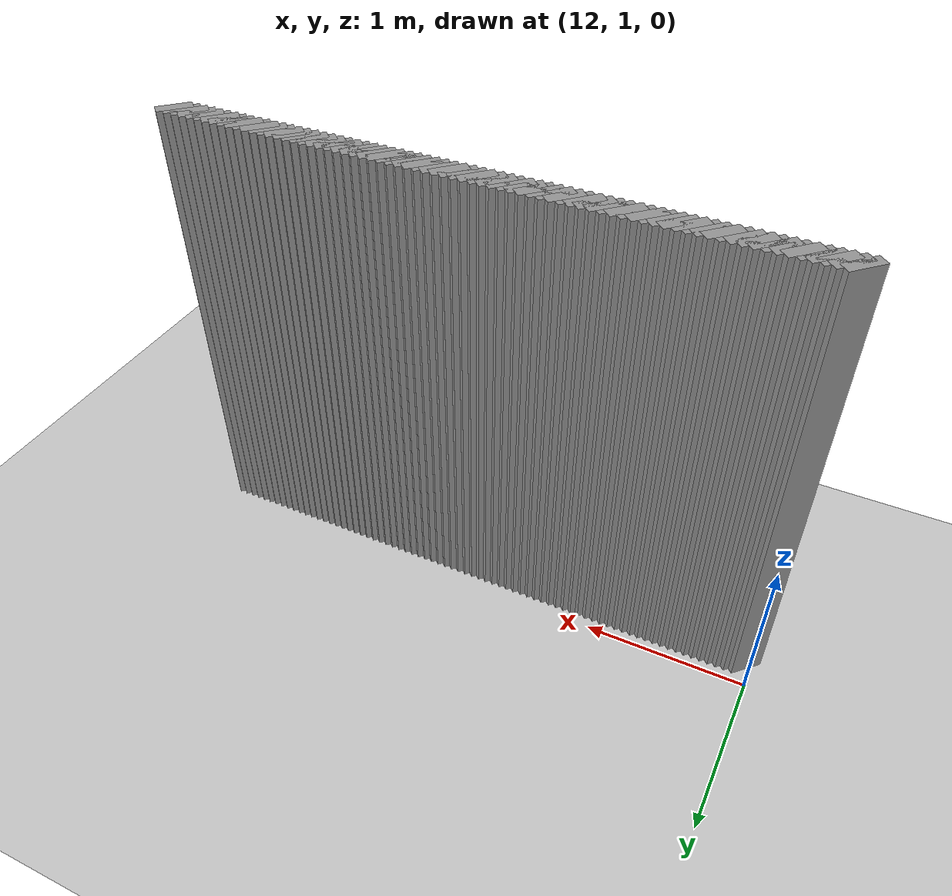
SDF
<sdf version="1.5">
 <world name="default">
  <include><uri>model://ground_plane</uri></include>
  <include><uri>model://sun</uri></include>
  <model name="grey_wall_2809">
   <static>1</static>
   <link name="link">
    <pose>12.05 0.8500000000000001  1.4 0 0 -0.7853981633974416</pose>
    <collision name="collision">
     <geometry><box><size>0.07071067811865529 .2  2.8</size></box></geometry>
    </collision>
    <visual name="visual">
     <cast_shadows>0</cast_shadows>
     <geometry><box><size>0.07071067811865529 .2  2.8</size></box></geometry>
     <material>
      <script>
       <uri>model://grey_wall/materials/scripts</uri>
       <uri>model://grey_wall/materials/textures</uri>
       <name>vrc/grey_wall</name>
      </script>
     </material>
    </visual>
   </link>
  </model>
  <model name="grey_wall_2810">
   <static>1</static>
   <link name="link">
    <pose>12.100000000000001 0.8500000000000001  1.4 0 0 -0.7853981633974416</pose>
    <collision name="collision">
     <geometry><box><size>0.07071067811865529 .2  2.8</size></box></geometry>
    </collision>
    <visual name="visual">
     <cast_shadows>0</cast_shadows>
     <geometry><box><size>0.07071067811865529 .2  2.8</size></box></geometry>
     <material>
      <script>
       <uri>model://grey_wall/materials/scripts</uri>
       <uri>model://grey_wall/materials/textures</uri>
       <name>vrc/grey_wall</name>
      </script>
     </material>
    </visual>
   </link>
  </model>
  <model name="grey_wall_2811">
   <static>1</static>
   <link name="link">
    <pose>12.15 0.8500000000000001  1.4 0 0 -0.7853981633974416</pose>
    <collision name="collision">
     <geometry><box><size>0.07071067811865529 .2  2.8</size></box></geometry>
    </collision>
    <visual name="visual">
     <cast_shadows>0</cast_shadows>
     <geometry><box><size>0.07071067811865529 .2  2.8</size></box></geometry>
     <material>
      <script>
       <uri>model://grey_wall/materials/scripts</uri>
       <uri>model://grey_wall/materials/textures</uri>
       <name>vrc/grey_wall</name>
      </script>
     </material>
    </visual>
   </link>
  </model>
  <model name="grey_wall_2812">
   <static>1</static>
   <link name="link">
    <pose>12.200000000000001 0.8500000000000001  1.4 0 0 -0.7853981633974416</pose>
    <collision name="collision">
     <geometry><box><size>0.07071067811865529 .2  2.8</size></box></geometry>
    </collision>
    <visual name="visual">
     <cast_shadows>0</cast_shadows>
     <geometry><box><size>0.07071067811865529 .2  2.8</size></box></geometry>
     <material>
      <script>
       <uri>model://grey_wall/materials/scripts</uri>
       <uri>model://grey_wall/materials/textures</uri>
       <name>vrc/grey_wall</name>
      </script>
     </material>
    </visual>
   </link>
  </model>
  <model name="grey_wall_2813">
   <static>1</static>
   <link name="link">
    <pose>12.25 0.8500000000000001  1.4 0 0 -0.7853981633974416</pose>
    <collision name="collision">
     <geometry><box><size>0.07071067811865529 .2  2.8</size></box></geometry>
    </collision>
    <visual name="visual">
     <cast_shadows>0</cast_shadows>
     <geometry><box><size>0.07071067811865529 .2  2.8</size></box></geometry>
     <material>
      <script>
       <uri>model://grey_wall/materials/scripts</uri>
       <uri>model://grey_wall/materials/textures</uri>
       <name>vrc/grey_wall</name>
      </script>
     </material>
    </visual>
   </link>
  </model>
  <model name="grey_wall_2814">
   <static>1</static>
   <link name="link">
    <pose>12.3 0.8500000000000001  1.4 0 0 -0.7853981633974416</pose>
    <collision name="collision">
     <geometry><box><size>0.07071067811865529 .2  2.8</size></box></geometry>
    </collision>
    <visual name="visual">
     <cast_shadows>0</cast_shadows>
     <geometry><box><size>0.07071067811865529 .2  2.8</size></box></geometry>
     <material>
      <script>
       <uri>model://grey_wall/materials/scripts</uri>
       <uri>model://grey_wall/materials/textures</uri>
       <name>vrc/grey_wall</name>
      </script>
     </material>
    </visual>
   </link>
  </model>
  <model name="grey_wall_2815">
   <static>1</static>
   <link name="link">
    <pose>12.350000000000001 0.8500000000000001  1.4 0 0 -0.7853981633974416</pose>
    <collision name="collision">
     <geometry><box><size>0.07071067811865529 .2  2.8</size></box></geometry>
    </collision>
    <visual name="visual">
     <cast_shadows>0</cast_shadows>
     <geometry><box><size>0.07071067811865529 .2  2.8</size></box></geometry>
     <material>
      <script>
       <uri>model://grey_wall/materials/scripts</uri>
       <uri>model://grey_wall/materials/textures</uri>
       <name>vrc/grey_wall</name>
      </script>
     </material>
    </visual>
   </link>
  </model>
  <model name="grey_wall_2816">
   <static>1</static>
   <link name="link">
    <pose>12.4 0.8500000000000001  1.4 0 0 -0.7853981633974416</pose>
    <collision name="collision">
     <geometry><box><size>0.07071067811865529 .2  2.8</size></box></geometry>
    </collision>
    <visual name="visual">
     <cast_shadows>0</cast_shadows>
     <geometry><box><size>0.07071067811865529 .2  2.8</size></box></geometry>
     <material>
      <script>
       <uri>model://grey_wall/materials/scripts</uri>
       <uri>model://grey_wall/materials/textures</uri>
       <name>vrc/grey_wall</name>
      </script>
     </material>
    </visual>
   </link>
  </model>
  <model name="grey_wall_2817">
   <static>1</static>
   <link name="link">
    <pose>12.450000000000001 0.8500000000000001  1.4 0 0 -0.7853981633974416</pose>
    <collision name="collision">
     <geometry><box><size>0.07071067811865529 .2  2.8</size></box></geometry>
    </collision>
    <visual name="visual">
     <cast_shadows>0</cast_shadows>
     <geometry><box><size>0.07071067811865529 .2  2.8</size></box></geometry>
     <material>
      <script>
       <uri>model://grey_wall/materials/scripts</uri>
       <uri>model://grey_wall/materials/textures</uri>
       <name>vrc/grey_wall</name>
      </script>
     </material>
    </visual>
   </link>
  </model>
  <model name="grey_wall_2818">
   <static>1</static>
   <link name="link">
    <pose>12.5 0.8500000000000001  1.4 0 0 -0.7853981633974416</pose>
    <collision name="collision">
     <geometry><box><size>0.07071067811865529 .2  2.8</size></box></geometry>
    </collision>
    <visual name="visual">
     <cast_shadows>0</cast_shadows>
     <geometry><box><size>0.07071067811865529 .2  2.8</size></box></geometry>
     <material>
      <script>
       <uri>model://grey_wall/materials/scripts</uri>
       <uri>model://grey_wall/materials/textures</uri>
       <name>vrc/grey_wall</name>
      </script>
     </material>
    </visual>
   </link>
  </model>
  <model name="grey_wall_2819">
   <static>1</static>
   <link name="link">
    <pose>12.55 0.8500000000000001  1.4 0 0 -0.7853981633974416</pose>
    <collision name="collision">
     <geometry><box><size>0.07071067811865529 .2  2.8</size></box></geometry>
    </collision>
    <visual name="visual">
     <cast_shadows>0</cast_shadows>
     <geometry><box><size>0.07071067811865529 .2  2.8</size></box></geometry>
     <material>
      <script>
       <uri>model://grey_wall/materials/scripts</uri>
       <uri>model://grey_wall/materials/textures</uri>
       <name>vrc/grey_wall</name>
      </script>
     </material>
    </visual>
   </link>
  </model>
  <model name="grey_wall_2820">
   <static>1</static>
   <link name="link">
    <pose>12.600000000000001 0.8500000000000001  1.4 0 0 -0.7853981633974416</pose>
    <collision name="collision">
     <geometry><box><size>0.07071067811865529 .2  2.8</size></box></geometry>
    </collision>
    <visual name="visual">
     <cast_shadows>0</cast_shadows>
     <geometry><box><size>0.07071067811865529 .2  2.8</size></box></geometry>
     <material>
      <script>
       <uri>model://grey_wall/materials/scripts</uri>
       <uri>model://grey_wall/materials/textures</uri>
       <name>vrc/grey_wall</name>
      </script>
     </material>
    </visual>
   </link>
  </model>
  <model name="grey_wall_2821">
   <static>1</static>
   <link name="link">
    <pose>12.65 0.8500000000000001  1.4 0 0 -0.7853981633974416</pose>
    <collision name="collision">
     <geometry><box><size>0.07071067811865529 .2  2.8</size></box></geometry>
    </collision>
    <visual name="visual">
     <cast_shadows>0</cast_shadows>
     <geometry><box><size>0.07071067811865529 .2  2.8</size></box></geometry>
     <material>
      <script>
       <uri>model://grey_wall/materials/scripts</uri>
       <uri>model://grey_wall/materials/textures</uri>
       <name>vrc/grey_wall</name>
      </script>
     </material>
    </visual>
   </link>
  </model>
  <model name="grey_wall_2822">
   <static>1</static>
   <link name="link">
    <pose>12.700000000000001 0.8500000000000001  1.4 0 0 -0.7853981633974416</pose>
    <collision name="collision">
     <geometry><box><size>0.07071067811865529 .2  2.8</size></box></geometry>
    </collision>
    <visual name="visual">
     <cast_shadows>0</cast_shadows>
     <geometry><box><size>0.07071067811865529 .2  2.8</size></box></geometry>
     <material>
      <script>
       <uri>model://grey_wall/materials/scripts</uri>
       <uri>model://grey_wall/materials/textures</uri>
       <name>vrc/grey_wall</name>
      </script>
     </material>
    </visual>
   </link>
  </model>
  <model name="grey_wall_2823">
   <static>1</static>
   <link name="link">
    <pose>12.75 0.8500000000000001  1.4 0 0 -0.7853981633974416</pose>
    <collision name="collision">
     <geometry><box><size>0.07071067811865529 .2  2.8</size></box></geometry>
    </collision>
    <visual name="visual">
     <cast_shadows>0</cast_shadows>
     <geometry><box><size>0.07071067811865529 .2  2.8</size></box></geometry>
     <material>
      <script>
       <uri>model://grey_wall/materials/scripts</uri>
       <uri>model://grey_wall/materials/textures</uri>
       <name>vrc/grey_wall</name>
      </script>
     </material>
    </visual>
   </link>
  </model>
  <model name="grey_wall_2824">
   <static>1</static>
   <link name="link">
    <pose>12.8 0.8500000000000001  1.4 0 0 -0.7853981633974416</pose>
    <collision name="collision">
     <geometry><box><size>0.07071067811865529 .2  2.8</size></box></geometry>
    </collision>
    <visual name="visual">
     <cast_shadows>0</cast_shadows>
     <geometry><box><size>0.07071067811865529 .2  2.8</size></box></geometry>
     <material>
      <script>
       <uri>model://grey_wall/materials/scripts</uri>
       <uri>model://grey_wall/materials/textures</uri>
       <name>vrc/grey_wall</name>
      </script>
     </material>
    </visual>
   </link>
  </model>
  <model name="grey_wall_2825">
   <static>1</static>
   <link name="link">
    <pose>12.850000000000001 0.8500000000000001  1.4 0 0 -0.7853981633974416</pose>
    <collision name="collision">
     <geometry><box><size>0.07071067811865529 .2  2.8</size></box></geometry>
    </collision>
    <visual name="visual">
     <cast_shadows>0</cast_shadows>
     <geometry><box><size>0.07071067811865529 .2  2.8</size></box></geometry>
     <material>
      <script>
       <uri>model://grey_wall/materials/scripts</uri>
       <uri>model://grey_wall/materials/textures</uri>
       <name>vrc/grey_wall</name>
      </script>
     </material>
    </visual>
   </link>
  </model>
  <model name="grey_wall_2826">
   <static>1</static>
   <link name="link">
    <pose>12.9 0.8500000000000001  1.4 0 0 -0.7853981633974416</pose>
    <collision name="collision">
     <geometry><box><size>0.07071067811865529 .2  2.8</size></box></geometry>
    </collision>
    <visual name="visual">
     <cast_shadows>0</cast_shadows>
     <geometry><box><size>0.07071067811865529 .2  2.8</size></box></geometry>
     <material>
      <script>
       <uri>model://grey_wall/materials/scripts</uri>
       <uri>model://grey_wall/materials/textures</uri>
       <name>vrc/grey_wall</name>
      </script>
     </material>
    </visual>
   </link>
  </model>
  <model name="grey_wall_2827">
   <static>1</static>
   <link name="link">
    <pose>12.950000000000001 0.8500000000000001  1.4 0 0 -0.7853981633974416</pose>
    <collision name="collision">
     <geometry><box><size>0.07071067811865529 .2  2.8</size></box></geometry>
    </collision>
    <visual name="visual">
     <cast_shadows>0</cast_shadows>
     <geometry><box><size>0.07071067811865529 .2  2.8</size></box></geometry>
     <material>
      <script>
       <uri>model://grey_wall/materials/scripts</uri>
       <uri>model://grey_wall/materials/textures</uri>
       <name>vrc/grey_wall</name>
      </script>
     </material>
    </visual>
   </link>
  </model>
  <model name="grey_wall_2828">
   <static>1</static>
   <link name="link">
    <pose>13.0 0.8500000000000001  1.4 0 0 -0.7853981633974416</pose>
    <collision name="collision">
     <geometry><box><size>0.07071067811865529 .2  2.8</size></box></geometry>
    </collision>
    <visual name="visual">
     <cast_shadows>0</cast_shadows>
     <geometry><box><size>0.07071067811865529 .2  2.8</size></box></geometry>
     <material>
      <script>
       <uri>model://grey_wall/materials/scripts</uri>
       <uri>model://grey_wall/materials/textures</uri>
       <name>vrc/grey_wall</name>
      </script>
     </material>
    </visual>
   </link>
  </model>
  <model name="grey_wall_2829">
   <static>1</static>
   <link name="link">
    <pose>13.05 0.8500000000000001  1.4 0 0 -0.7853981633974416</pose>
    <collision name="collision">
     <geometry><box><size>0.07071067811865529 .2  2.8</size></box></geometry>
    </collision>
    <visual name="visual">
     <cast_shadows>0</cast_shadows>
     <geometry><box><size>0.07071067811865529 .2  2.8</size></box></geometry>
     <material>
      <script>
       <uri>model://grey_wall/materials/scripts</uri>
       <uri>model://grey_wall/materials/textures</uri>
       <name>vrc/grey_wall</name>
      </script>
     </material>
    </visual>
   </link>
  </model>
  <model name="grey_wall_2830">
   <static>1</static>
   <link name="link">
    <pose>13.100000000000001 0.8500000000000001  1.4 0 0 -0.7853981633974416</pose>
    <collision name="collision">
     <geometry><box><size>0.07071067811865529 .2  2.8</size></box></geometry>
    </collision>
    <visual name="visual">
     <cast_shadows>0</cast_shadows>
     <geometry><box><size>0.07071067811865529 .2  2.8</size></box></geometry>
     <material>
      <script>
       <uri>model://grey_wall/materials/scripts</uri>
       <uri>model://grey_wall/materials/textures</uri>
       <name>vrc/grey_wall</name>
      </script>
     </material>
    </visual>
   </link>
  </model>
  <model name="grey_wall_2831">
   <static>1</static>
   <link name="link">
    <pose>13.15 0.8500000000000001  1.4 0 0 -0.7853981633974416</pose>
    <collision name="collision">
     <geometry><box><size>0.07071067811865529 .2  2.8</size></box></geometry>
    </collision>
    <visual name="visual">
     <cast_shadows>0</cast_shadows>
     <geometry><box><size>0.07071067811865529 .2  2.8</size></box></geometry>
     <material>
      <script>
       <uri>model://grey_wall/materials/scripts</uri>
       <uri>model://grey_wall/materials/textures</uri>
       <name>vrc/grey_wall</name>
      </script>
     </material>
    </visual>
   </link>
  </model>
  <model name="grey_wall_2832">
   <static>1</static>
   <link name="link">
    <pose>13.200000000000001 0.8500000000000001  1.4 0 0 -0.7853981633974416</pose>
    <collision name="collision">
     <geometry><box><size>0.07071067811865529 .2  2.8</size></box></geometry>
    </collision>
    <visual name="visual">
     <cast_shadows>0</cast_shadows>
     <geometry><box><size>0.07071067811865529 .2  2.8</size></box></geometry>
     <material>
      <script>
       <uri>model://grey_wall/materials/scripts</uri>
       <uri>model://grey_wall/materials/textures</uri>
       <name>vrc/grey_wall</name>
      </script>
     </material>
    </visual>
   </link>
  </model>
  <model name="grey_wall_2833">
   <static>1</static>
   <link name="link">
    <pose>13.25 0.8500000000000001  1.4 0 0 -0.7853981633974416</pose>
    <collision name="collision">
     <geometry><box><size>0.07071067811865529 .2  2.8</size></box></geometry>
    </collision>
    <visual name="visual">
     <cast_shadows>0</cast_shadows>
     <geometry><box><size>0.07071067811865529 .2  2.8</size></box></geometry>
     <material>
      <script>
       <uri>model://grey_wall/materials/scripts</uri>
       <uri>model://grey_wall/materials/textures</uri>
       <name>vrc/grey_wall</name>
      </script>
     </material>
    </visual>
   </link>
  </model>
  <model name="grey_wall_2834">
   <static>1</static>
   <link name="link">
    <pose>13.3 0.8500000000000001  1.4 0 0 -0.7853981633974416</pose>
    <collision name="collision">
     <geometry><box><size>0.07071067811865529 .2  2.8</size></box></geometry>
    </collision>
    <visual name="visual">
     <cast_shadows>0</cast_shadows>
     <geometry><box><size>0.07071067811865529 .2  2.8</size></box></geometry>
     <material>
      <script>
       <uri>model://grey_wall/materials/scripts</uri>
       <uri>model://grey_wall/materials/textures</uri>
       <name>vrc/grey_wall</name>
      </script>
     </material>
    </visual>
   </link>
  </model>
  <model name="grey_wall_2835">
   <static>1</static>
   <link name="link">
    <pose>13.350000000000001 0.8500000000000001  1.4 0 0 -0.7853981633974416</pose>
    <collision name="collision">
     <geometry><box><size>0.07071067811865529 .2  2.8</size></box></geometry>
    </collision>
    <visual name="visual">
     <cast_shadows>0</cast_shadows>
     <geometry><box><size>0.07071067811865529 .2  2.8</size></box></geometry>
     <material>
      <script>
       <uri>model://grey_wall/materials/scripts</uri>
       <uri>model://grey_wall/materials/textures</uri>
       <name>vrc/grey_wall</name>
      </script>
     </material>
    </visual>
   </link>
  </model>
  <model name="grey_wall_2836">
   <static>1</static>
   <link name="link">
    <pose>13.4 0.8500000000000001  1.4 0 0 -0.7853981633974416</pose>
    <collision name="collision">
     <geometry><box><size>0.07071067811865529 .2  2.8</size></box></geometry>
    </collision>
    <visual name="visual">
     <cast_shadows>0</cast_shadows>
     <geometry><box><size>0.07071067811865529 .2  2.8</size></box></geometry>
     <material>
      <script>
       <uri>model://grey_wall/materials/scripts</uri>
       <uri>model://grey_wall/materials/textures</uri>
       <name>vrc/grey_wall</name>
      </script>
     </material>
    </visual>
   </link>
  </model>
  <model name="grey_wall_2837">
   <static>1</static>
   <link name="link">
    <pose>13.450000000000001 0.8500000000000001  1.4 0 0 -0.7853981633974416</pose>
    <collision name="collision">
     <geometry><box><size>0.07071067811865529 .2  2.8</size></box></geometry>
    </collision>
    <visual name="visual">
     <cast_shadows>0</cast_shadows>
     <geometry><box><size>0.07071067811865529 .2  2.8</size></box></geometry>
     <material>
      <script>
       <uri>model://grey_wall/materials/scripts</uri>
       <uri>model://grey_wall/materials/textures</uri>
       <name>vrc/grey_wall</name>
      </script>
     </material>
    </visual>
   </link>
  </model>
  <model name="grey_wall_2838">
   <static>1</static>
   <link name="link">
    <pose>13.5 0.8500000000000001  1.4 0 0 -0.7853981633974416</pose>
    <collision name="collision">
     <geometry><box><size>0.07071067811865529 .2  2.8</size></box></geometry>
    </collision>
    <visual name="visual">
     <cast_shadows>0</cast_shadows>
     <geometry><box><size>0.07071067811865529 .2  2.8</size></box></geometry>
     <material>
      <script>
       <uri>model://grey_wall/materials/scripts</uri>
       <uri>model://grey_wall/materials/textures</uri>
       <name>vrc/grey_wall</name>
      </script>
     </material>
    </visual>
   </link>
  </model>
  <model name="grey_wall_2839">
   <static>1</static>
   <link name="link">
    <pose>13.55 0.8500000000000001  1.4 0 0 -0.7853981633974416</pose>
    <collision name="collision">
     <geometry><box><size>0.07071067811865529 .2  2.8</size></box></geometry>
    </collision>
    <visual name="visual">
     <cast_shadows>0</cast_shadows>
     <geometry><box><size>0.07071067811865529 .2  2.8</size></box></geometry>
     <material>
      <script>
       <uri>model://grey_wall/materials/scripts</uri>
       <uri>model://grey_wall/materials/textures</uri>
       <name>vrc/grey_wall</name>
      </script>
     </material>
    </visual>
   </link>
  </model>
  <model name="grey_wall_2840">
   <static>1</static>
   <link name="link">
    <pose>13.600000000000001 0.8500000000000001  1.4 0 0 -0.7853981633974416</pose>
    <collision name="collision">
     <geometry><box><size>0.07071067811865529 .2  2.8</size></box></geometry>
    </collision>
    <visual name="visual">
     <cast_shadows>0</cast_shadows>
     <geometry><box><size>0.07071067811865529 .2  2.8</size></box></geometry>
     <material>
      <script>
       <uri>model://grey_wall/materials/scripts</uri>
       <uri>model://grey_wall/materials/textures</uri>
       <name>vrc/grey_wall</name>
      </script>
     </material>
    </visual>
   </link>
  </model>
  <model name="grey_wall_2841">
   <static>1</static>
   <link name="link">
    <pose>13.65 0.8500000000000001  1.4 0 0 -0.7853981633974416</pose>
    <collision name="collision">
     <geometry><box><size>0.07071067811865529 .2  2.8</size></box></geometry>
    </collision>
    <visual name="visual">
     <cast_shadows>0</cast_shadows>
     <geometry><box><size>0.07071067811865529 .2  2.8</size></box></geometry>
     <material>
      <script>
       <uri>model://grey_wall/materials/scripts</uri>
       <uri>model://grey_wall/materials/textures</uri>
       <name>vrc/grey_wall</name>
      </script>
     </material>
    </visual>
   </link>
  </model>
  <model name="grey_wall_2842">
   <static>1</static>
   <link name="link">
    <pose>13.700000000000001 0.8500000000000001  1.4 0 0 -0.7853981633974416</pose>
    <collision name="collision">
     <geometry><box><size>0.07071067811865529 .2  2.8</size></box></geometry>
    </collision>
    <visual name="visual">
     <cast_shadows>0</cast_shadows>
     <geometry><box><size>0.07071067811865529 .2  2.8</size></box></geometry>
     <material>
      <script>
       <uri>model://grey_wall/materials/scripts</uri>
       <uri>model://grey_wall/materials/textures</uri>
       <name>vrc/grey_wall</name>
      </script>
     </material>
    </visual>
   </link>
  </model>
  <model name="grey_wall_2843">
   <static>1</static>
   <link name="link">
    <pose>13.75 0.8500000000000001  1.4 0 0 -0.7853981633974416</pose>
    <collision name="collision">
     <geometry><box><size>0.07071067811865529 .2  2.8</size></box></geometry>
    </collision>
    <visual name="visual">
     <cast_shadows>0</cast_shadows>
     <geometry><box><size>0.07071067811865529 .2  2.8</size></box></geometry>
     <material>
      <script>
       <uri>model://grey_wall/materials/scripts</uri>
       <uri>model://grey_wall/materials/textures</uri>
       <name>vrc/grey_wall</name>
      </script>
     </material>
    </visual>
   </link>
  </model>
  <model name="grey_wall_2844">
   <static>1</static>
   <link name="link">
    <pose>13.8 0.8500000000000001  1.4 0 0 -0.7853981633974416</pose>
    <collision name="collision">
     <geometry><box><size>0.07071067811865529 .2  2.8</size></box></geometry>
    </collision>
    <visual name="visual">
     <cast_shadows>0</cast_shadows>
     <geometry><box><size>0.07071067811865529 .2  2.8</size></box></geometry>
     <material>
      <script>
       <uri>model://grey_wall/materials/scripts</uri>
       <uri>model://grey_wall/materials/textures</uri>
       <name>vrc/grey_wall</name>
      </script>
     </material>
    </visual>
   </link>
  </model>
  <model name="grey_wall_2845">
   <static>1</static>
   <link name="link">
    <pose>13.850000000000001 0.8500000000000001  1.4 0 0 -0.7853981633974416</pose>
    <collision name="collision">
     <geometry><box><size>0.07071067811865529 .2  2.8</size></box></geometry>
    </collision>
    <visual name="visual">
     <cast_shadows>0</cast_shadows>
     <geometry><box><size>0.07071067811865529 .2  2.8</size></box></geometry>
     <material>
      <script>
       <uri>model://grey_wall/materials/scripts</uri>
       <uri>model://grey_wall/materials/textures</uri>
       <name>vrc/grey_wall</name>
      </script>
     </material>
    </visual>
   </link>
  </model>
  <model name="grey_wall_2846">
   <static>1</static>
   <link name="link">
    <pose>13.9 0.8500000000000001  1.4 0 0 -0.7853981633974416</pose>
    <collision name="collision">
     <geometry><box><size>0.07071067811865529 .2  2.8</size></box></geometry>
    </collision>
    <visual name="visual">
     <cast_shadows>0</cast_shadows>
     <geometry><box><size>0.07071067811865529 .2  2.8</size></box></geometry>
     <material>
      <script>
       <uri>model://grey_wall/materials/scripts</uri>
       <uri>model://grey_wall/materials/textures</uri>
       <name>vrc/grey_wall</name>
      </script>
     </material>
    </visual>
   </link>
  </model>
  <model name="grey_wall_2847">
   <static>1</static>
   <link name="link">
    <pose>13.950000000000001 0.8500000000000001  1.4 0 0 -0.7853981633974416</pose>
    <collision name="collision">
     <geometry><box><size>0.07071067811865529 .2  2.8</size></box></geometry>
    </collision>
    <visual name="visual">
     <cast_shadows>0</cast_shadows>
     <geometry><box><size>0.07071067811865529 .2  2.8</size></box></geometry>
     <material>
      <script>
       <uri>model://grey_wall/materials/scripts</uri>
       <uri>model://grey_wall/materials/textures</uri>
       <name>vrc/grey_wall</name>
      </script>
     </material>
    </visual>
   </link>
  </model>
  <model name="grey_wall_2848">
   <static>1</static>
   <link name="link">
    <pose>14.0 0.8500000000000001  1.4 0 0 -0.7853981633974416</pose>
    <collision name="collision">
     <geometry><box><size>0.07071067811865529 .2  2.8</size></box></geometry>
    </collision>
    <visual name="visual">
     <cast_shadows>0</cast_shadows>
     <geometry><box><size>0.07071067811865529 .2  2.8</size></box></geometry>
     <material>
      <script>
       <uri>model://grey_wall/materials/scripts</uri>
       <uri>model://grey_wall/materials/textures</uri>
       <name>vrc/grey_wall</name>
      </script>
     </material>
    </visual>
   </link>
  </model>
  <model name="grey_wall_2849">
   <static>1</static>
   <link name="link">
    <pose>14.05 0.8500000000000001  1.4 0 0 -0.7853981633974416</pose>
    <collision name="collision">
     <geometry><box><size>0.07071067811865529 .2  2.8</size></box></geometry>
    </collision>
    <visual name="visual">
     <cast_shadows>0</cast_shadows>
     <geometry><box><size>0.07071067811865529 .2  2.8</size></box></geometry>
     <material>
      <script>
       <uri>model://grey_wall/materials/scripts</uri>
       <uri>model://grey_wall/materials/textures</uri>
       <name>vrc/grey_wall</name>
      </script>
     </material>
    </visual>
   </link>
  </model>
  <model name="grey_wall_2850">
   <static>1</static>
   <link name="link">
    <pose>14.100000000000001 0.8500000000000001  1.4 0 0 -0.7853981633974416</pose>
    <collision name="collision">
     <geometry><box><size>0.07071067811865529 .2  2.8</size></box></geometry>
    </collision>
    <visual name="visual">
     <cast_shadows>0</cast_shadows>
     <geometry><box><size>0.07071067811865529 .2  2.8</size></box></geometry>
     <material>
      <script>
       <uri>model://grey_wall/materials/scripts</uri>
       <uri>model://grey_wall/materials/textures</uri>
       <name>vrc/grey_wall</name>
      </script>
     </material>
    </visual>
   </link>
  </model>
  <model name="grey_wall_2851">
   <static>1</static>
   <link name="link">
    <pose>14.15 0.8500000000000001  1.4 0 0 -0.7853981633974416</pose>
    <collision name="collision">
     <geometry><box><size>0.07071067811865529 .2  2.8</size></box></geometry>
    </collision>
    <visual name="visual">
     <cast_shadows>0</cast_shadows>
     <geometry><box><size>0.07071067811865529 .2  2.8</size></box></geometry>
     <material>
      <script>
       <uri>model://grey_wall/materials/scripts</uri>
       <uri>model://grey_wall/materials/textures</uri>
       <name>vrc/grey_wall</name>
      </script>
     </material>
    </visual>
   </link>
  </model>
  <model name="grey_wall_2852">
   <static>1</static>
   <link name="link">
    <pose>14.200000000000001 0.8500000000000001  1.4 0 0 -0.7853981633974416</pose>
    <collision name="collision">
     <geometry><box><size>0.07071067811865529 .2  2.8</size></box></geometry>
    </collision>
    <visual name="visual">
     <cast_shadows>0</cast_shadows>
     <geometry><box><size>0.07071067811865529 .2  2.8</size></box></geometry>
     <material>
      <script>
       <uri>model://grey_wall/materials/scripts</uri>
       <uri>model://grey_wall/materials/textures</uri>
       <name>vrc/grey_wall</name>
      </script>
     </material>
    </visual>
   </link>
  </model>
  <model name="grey_wall_2853">
   <static>1</static>
   <link name="link">
    <pose>14.25 0.8500000000000001  1.4 0 0 -0.7853981633974416</pose>
    <collision name="collision">
     <geometry><box><size>0.07071067811865529 .2  2.8</size></box></geometry>
    </collision>
    <visual name="visual">
     <cast_shadows>0</cast_shadows>
     <geometry><box><size>0.07071067811865529 .2  2.8</size></box></geometry>
     <material>
      <script>
       <uri>model://grey_wall/materials/scripts</uri>
       <uri>model://grey_wall/materials/textures</uri>
       <name>vrc/grey_wall</name>
      </script>
     </material>
    </visual>
   </link>
  </model>
  <model name="grey_wall_2854">
   <static>1</static>
   <link name="link">
    <pose>14.3 0.8500000000000001  1.4 0 0 -0.7853981633974416</pose>
    <collision name="collision">
     <geometry><box><size>0.07071067811865529 .2  2.8</size></box></geometry>
    </collision>
    <visual name="visual">
     <cast_shadows>0</cast_shadows>
     <geometry><box><size>0.07071067811865529 .2  2.8</size></box></geometry>
     <material>
      <script>
       <uri>model://grey_wall/materials/scripts</uri>
       <uri>model://grey_wall/materials/textures</uri>
       <name>vrc/grey_wall</name>
      </script>
     </material>
    </visual>
   </link>
  </model>
  <model name="grey_wall_2855">
   <static>1</static>
   <link name="link">
    <pose>14.350000000000001 0.8500000000000001  1.4 0 0 -0.7853981633974416</pose>
    <collision name="collision">
     <geometry><box><size>0.07071067811865529 .2  2.8</size></box></geometry>
    </collision>
    <visual name="visual">
     <cast_shadows>0</cast_shadows>
     <geometry><box><size>0.07071067811865529 .2  2.8</size></box></geometry>
     <material>
      <script>
       <uri>model://grey_wall/materials/scripts</uri>
       <uri>model://grey_wall/materials/textures</uri>
       <name>vrc/grey_wall</name>
      </script>
     </material>
    </visual>
   </link>
  </model>
  <model name="grey_wall_2856">
   <static>1</static>
   <link name="link">
    <pose>14.4 0.8500000000000001  1.4 0 0 -0.7853981633974416</pose>
    <collision name="collision">
     <geometry><box><size>0.07071067811865529 .2  2.8</size></box></geometry>
    </collision>
    <visual name="visual">
     <cast_shadows>0</cast_shadows>
     <geometry><box><size>0.07071067811865529 .2  2.8</size></box></geometry>
     <material>
      <script>
       <uri>model://grey_wall/materials/scripts</uri>
       <uri>model://grey_wall/materials/textures</uri>
       <name>vrc/grey_wall</name>
      </script>
     </material>
    </visual>
   </link>
  </model>
  <model name="grey_wall_2857">
   <static>1</static>
   <link name="link">
    <pose>14.450000000000001 0.8500000000000001  1.4 0 0 -0.7853981633974416</pose>
    <collision name="collision">
     <geometry><box><size>0.07071067811865529 .2  2.8</size></box></geometry>
    </collision>
    <visual name="visual">
     <cast_shadows>0</cast_shadows>
     <geometry><box><size>0.07071067811865529 .2  2.8</size></box></geometry>
     <material>
      <script>
       <uri>model://grey_wall/materials/scripts</uri>
       <uri>model://grey_wall/materials/textures</uri>
       <name>vrc/grey_wall</name>
      </script>
     </material>
    </visual>
   </link>
  </model>
  <model name="grey_wall_2858">
   <static>1</static>
   <link name="link">
    <pose>14.5 0.8500000000000001  1.4 0 0 -0.7853981633974416</pose>
    <collision name="collision">
     <geometry><box><size>0.07071067811865529 .2  2.8</size></box></geometry>
    </collision>
    <visual name="visual">
     <cast_shadows>0</cast_shadows>
     <geometry><box><size>0.07071067811865529 .2  2.8</size></box></geometry>
     <material>
      <script>
       <uri>model://grey_wall/materials/scripts</uri>
       <uri>model://grey_wall/materials/textures</uri>
       <name>vrc/grey_wall</name>
      </script>
     </material>
    </visual>
   </link>
  </model>
  <model name="grey_wall_2859">
   <static>1</static>
   <link name="link">
    <pose>14.55 0.8500000000000001  1.4 0 0 -0.7853981633974416</pose>
    <collision name="collision">
     <geometry><box><size>0.07071067811865529 .2  2.8</size></box></geometry>
    </collision>
    <visual name="visual">
     <cast_shadows>0</cast_shadows>
     <geometry><box><size>0.07071067811865529 .2  2.8</size></box></geometry>
     <material>
      <script>
       <uri>model://grey_wall/materials/scripts</uri>
       <uri>model://grey_wall/materials/textures</uri>
       <name>vrc/grey_wall</name>
      </script>
     </material>
    </visual>
   </link>
  </model>
  <model name="grey_wall_2860">
   <static>1</static>
   <link name="link">
    <pose>14.600000000000001 0.8500000000000001  1.4 0 0 -0.7853981633974416</pose>
    <collision name="collision">
     <geometry><box><size>0.07071067811865529 .2  2.8</size></box></geometry>
    </collision>
    <visual name="visual">
     <cast_shadows>0</cast_shadows>
     <geometry><box><size>0.07071067811865529 .2  2.8</size></box></geometry>
     <material>
      <script>
       <uri>model://grey_wall/materials/scripts</uri>
       <uri>model://grey_wall/materials/textures</uri>
       <name>vrc/grey_wall</name>
      </script>
     </material>
    </visual>
   </link>
  </model>
  <model name="grey_wall_2861">
   <static>1</static>
   <link name="link">
    <pose>14.65 0.8500000000000001  1.4 0 0 -0.7853981633974416</pose>
    <collision name="collision">
     <geometry><box><size>0.07071067811865529 .2  2.8</size></box></geometry>
    </collision>
    <visual name="visual">
     <cast_shadows>0</cast_shadows>
     <geometry><box><size>0.07071067811865529 .2  2.8</size></box></geometry>
     <material>
      <script>
       <uri>model://grey_wall/materials/scripts</uri>
       <uri>model://grey_wall/materials/textures</uri>
       <name>vrc/grey_wall</name>
      </script>
     </material>
    </visual>
   </link>
  </model>
  <model name="grey_wall_2862">
   <static>1</static>
   <link name="link">
    <pose>14.700000000000001 0.8500000000000001  1.4 0 0 -0.7853981633974416</pose>
    <collision name="collision">
     <geometry><box><size>0.07071067811865529 .2  2.8</size></box></geometry>
    </collision>
    <visual name="visual">
     <cast_shadows>0</cast_shadows>
     <geometry><box><size>0.07071067811865529 .2  2.8</size></box></geometry>
     <material>
      <script>
       <uri>model://grey_wall/materials/scripts</uri>
       <uri>model://grey_wall/materials/textures</uri>
       <name>vrc/grey_wall</name>
      </script>
     </material>
    </visual>
   </link>
  </model>
  <model name="grey_wall_2863">
   <static>1</static>
   <link name="link">
    <pose>14.75 0.8500000000000001  1.4 0 0 -0.7853981633974416</pose>
    <collision name="collision">
     <geometry><box><size>0.07071067811865529 .2  2.8</size></box></geometry>
    </collision>
    <visual name="visual">
     <cast_shadows>0</cast_shadows>
     <geometry><box><size>0.07071067811865529 .2  2.8</size></box></geometry>
     <material>
      <script>
       <uri>model://grey_wall/materials/scripts</uri>
       <uri>model://grey_wall/materials/textures</uri>
       <name>vrc/grey_wall</name>
      </script>
     </material>
    </visual>
   </link>
  </model>
  <model name="grey_wall_2864">
   <static>1</static>
   <link name="link">
    <pose>14.8 0.8500000000000001  1.4 0 0 -0.7853981633974416</pose>
    <collision name="collision">
     <geometry><box><size>0.07071067811865529 .2  2.8</size></box></geometry>
    </collision>
    <visual name="visual">
     <cast_shadows>0</cast_shadows>
     <geometry><box><size>0.07071067811865529 .2  2.8</size></box></geometry>
     <material>
      <script>
       <uri>model://grey_wall/materials/scripts</uri>
       <uri>model://grey_wall/materials/textures</uri>
       <name>vrc/grey_wall</name>
      </script>
     </material>
    </visual>
   </link>
  </model>
  <model name="grey_wall_2865">
   <static>1</static>
   <link name="link">
    <pose>14.850000000000001 0.8500000000000001  1.4 0 0 -0.7853981633974416</pose>
    <collision name="collision">
     <geometry><box><size>0.07071067811865529 .2  2.8</size></box></geometry>
    </collision>
    <visual name="visual">
     <cast_shadows>0</cast_shadows>
     <geometry><box><size>0.07071067811865529 .2  2.8</size></box></geometry>
     <material>
      <script>
       <uri>model://grey_wall/materials/scripts</uri>
       <uri>model://grey_wall/materials/textures</uri>
       <name>vrc/grey_wall</name>
      </script>
     </material>
    </visual>
   </link>
  </model>
  <model name="grey_wall_2866">
   <static>1</static>
   <link name="link">
    <pose>14.9 0.8500000000000001  1.4 0 0 -0.7853981633974416</pose>
    <collision name="collision">
     <geometry><box><size>0.07071067811865529 .2  2.8</size></box></geometry>
    </collision>
    <visual name="visual">
     <cast_shadows>0</cast_shadows>
     <geometry><box><size>0.07071067811865529 .2  2.8</size></box></geometry>
     <material>
      <script>
       <uri>model://grey_wall/materials/scripts</uri>
       <uri>model://grey_wall/materials/textures</uri>
       <name>vrc/grey_wall</name>
      </script>
     </material>
    </visual>
   </link>
  </model>
  <model name="grey_wall_2867">
   <static>1</static>
   <link name="link">
    <pose>14.950000000000001 0.8500000000000001  1.4 0 0 -0.7853981633974416</pose>
    <collision name="collision">
     <geometry><box><size>0.07071067811865529 .2  2.8</size></box></geometry>
    </collision>
    <visual name="visual">
     <cast_shadows>0</cast_shadows>
     <geometry><box><size>0.07071067811865529 .2  2.8</size></box></geometry>
     <material>
      <script>
       <uri>model://grey_wall/materials/scripts</uri>
       <uri>model://grey_wall/materials/textures</uri>
       <name>vrc/grey_wall</name>
      </script>
     </material>
    </visual>
   </link>
  </model>
  <model name="grey_wall_2868">
   <static>1</static>
   <link name="link">
    <pose>15.0 0.8500000000000001  1.4 0 0 -0.7853981633974416</pose>
    <collision name="collision">
     <geometry><box><size>0.07071067811865529 .2  2.8</size></box></geometry>
    </collision>
    <visual name="visual">
     <cast_shadows>0</cast_shadows>
     <geometry><box><size>0.07071067811865529 .2  2.8</size></box></geometry>
     <material>
      <script>
       <uri>model://grey_wall/materials/scripts</uri>
       <uri>model://grey_wall/materials/textures</uri>
       <name>vrc/grey_wall</name>
      </script>
     </material>
    </visual>
   </link>
  </model>
  <model name="grey_wall_2869">
   <static>1</static>
   <link name="link">
    <pose>15.05 0.8500000000000001  1.4 0 0 -0.7853981633974416</pose>
    <collision name="collision">
     <geometry><box><size>0.07071067811865529 .2  2.8</size></box></geometry>
    </collision>
    <visual name="visual">
     <cast_shadows>0</cast_shadows>
     <geometry><box><size>0.07071067811865529 .2  2.8</size></box></geometry>
     <material>
      <script>
       <uri>model://grey_wall/materials/scripts</uri>
       <uri>model://grey_wall/materials/textures</uri>
       <name>vrc/grey_wall</name>
      </script>
     </material>
    </visual>
   </link>
  </model>
  <model name="grey_wall_2870">
   <static>1</static>
   <link name="link">
    <pose>15.100000000000001 0.8500000000000001  1.4 0 0 -0.7853981633974416</pose>
    <collision name="collision">
     <geometry><box><size>0.07071067811865529 .2  2.8</size></box></geometry>
    </collision>
    <visual name="visual">
     <cast_shadows>0</cast_shadows>
     <geometry><box><size>0.07071067811865529 .2  2.8</size></box></geometry>
     <material>
      <script>
       <uri>model://grey_wall/materials/scripts</uri>
       <uri>model://grey_wall/materials/textures</uri>
       <name>vrc/grey_wall</name>
      </script>
     </material>
    </visual>
   </link>
  </model>
  <model name="grey_wall_2871">
   <static>1</static>
   <link name="link">
    <pose>15.15 0.8500000000000001  1.4 0 0 -0.7853981633974416</pose>
    <collision name="collision">
     <geometry><box><size>0.07071067811865529 .2  2.8</size></box></geometry>
    </collision>
    <visual name="visual">
     <cast_shadows>0</cast_shadows>
     <geometry><box><size>0.07071067811865529 .2  2.8</size></box></geometry>
     <material>
      <script>
       <uri>model://grey_wall/materials/scripts</uri>
       <uri>model://grey_wall/materials/textures</uri>
       <name>vrc/grey_wall</name>
      </script>
     </material>
    </visual>
   </link>
  </model>
  <model name="grey_wall_2872">
   <static>1</static>
   <link name="link">
    <pose>15.200000000000001 0.8500000000000001  1.4 0 0 -0.7853981633974416</pose>
    <collision name="collision">
     <geometry><box><size>0.07071067811865529 .2  2.8</size></box></geometry>
    </collision>
    <visual name="visual">
     <cast_shadows>0</cast_shadows>
     <geometry><box><size>0.07071067811865529 .2  2.8</size></box></geometry>
     <material>
      <script>
       <uri>model://grey_wall/materials/scripts</uri>
       <uri>model://grey_wall/materials/textures</uri>
       <name>vrc/grey_wall</name>
      </script>
     </material>
    </visual>
   </link>
  </model>
  <model name="grey_wall_2873">
   <static>1</static>
   <link name="link">
    <pose>15.25 0.8500000000000001  1.4 0 0 -0.7853981633974416</pose>
    <collision name="collision">
     <geometry><box><size>0.07071067811865529 .2  2.8</size></box></geometry>
    </collision>
    <visual name="visual">
     <cast_shadows>0</cast_shadows>
     <geometry><box><size>0.07071067811865529 .2  2.8</size></box></geometry>
     <material>
      <script>
       <uri>model://grey_wall/materials/scripts</uri>
       <uri>model://grey_wall/materials/textures</uri>
       <name>vrc/grey_wall</name>
      </script>
     </material>
    </visual>
   </link>
  </model>
  <model name="grey_wall_2874">
   <static>1</static>
   <link name="link">
    <pose>15.3 0.8500000000000001  1.4 0 0 -0.7853981633974416</pose>
    <collision name="collision">
     <geometry><box><size>0.07071067811865529 .2  2.8</size></box></geometry>
    </collision>
    <visual name="visual">
     <cast_shadows>0</cast_shadows>
     <geometry><box><size>0.07071067811865529 .2  2.8</size></box></geometry>
     <material>
      <script>
       <uri>model://grey_wall/materials/scripts</uri>
       <uri>model://grey_wall/materials/textures</uri>
       <name>vrc/grey_wall</name>
      </script>
     </material>
    </visual>
   </link>
  </model>
  <model name="grey_wall_2875">
   <static>1</static>
   <link name="link">
    <pose>15.350000000000001 0.8500000000000001  1.4 0 0 -0.7853981633974416</pose>
    <collision name="collision">
     <geometry><box><size>0.07071067811865529 .2  2.8</size></box></geometry>
    </collision>
    <visual name="visual">
     <cast_shadows>0</cast_shadows>
     <geometry><box><size>0.07071067811865529 .2  2.8</size></box></geometry>
     <material>
      <script>
       <uri>model://grey_wall/materials/scripts</uri>
       <uri>model://grey_wall/materials/textures</uri>
       <name>vrc/grey_wall</name>
      </script>
     </material>
    </visual>
   </link>
  </model>
  <model name="grey_wall_2876">
   <static>1</static>
   <link name="link">
    <pose>15.4 0.8500000000000001  1.4 0 0 -0.7853981633974416</pose>
    <collision name="collision">
     <geometry><box><size>0.07071067811865529 .2  2.8</size></box></geometry>
    </collision>
    <visual name="visual">
     <cast_shadows>0</cast_shadows>
     <geometry><box><size>0.07071067811865529 .2  2.8</size></box></geometry>
     <material>
      <script>
       <uri>model://grey_wall/materials/scripts</uri>
       <uri>model://grey_wall/materials/textures</uri>
       <name>vrc/grey_wall</name>
      </script>
     </material>
    </visual>
   </link>
  </model>
  <model name="grey_wall_2877">
   <static>1</static>
   <link name="link">
    <pose>15.450000000000001 0.8500000000000001  1.4 0 0 -0.7853981633974416</pose>
    <collision name="collision">
     <geometry><box><size>0.07071067811865529 .2  2.8</size></box></geometry>
    </collision>
    <visual name="visual">
     <cast_shadows>0</cast_shadows>
     <geometry><box><size>0.07071067811865529 .2  2.8</size></box></geometry>
     <material>
      <script>
       <uri>model://grey_wall/materials/scripts</uri>
       <uri>model://grey_wall/materials/textures</uri>
       <name>vrc/grey_wall</name>
      </script>
     </material>
    </visual>
   </link>
  </model>
  <model name="grey_wall_2878">
   <static>1</static>
   <link name="link">
    <pose>15.5 0.8500000000000001  1.4 0 0 -0.7853981633974416</pose>
    <collision name="collision">
     <geometry><box><size>0.07071067811865529 .2  2.8</size></box></geometry>
    </collision>
    <visual name="visual">
     <cast_shadows>0</cast_shadows>
     <geometry><box><size>0.07071067811865529 .2  2.8</size></box></geometry>
     <material>
      <script>
       <uri>model://grey_wall/materials/scripts</uri>
       <uri>model://grey_wall/materials/textures</uri>
       <name>vrc/grey_wall</name>
      </script>
     </material>
    </visual>
   </link>
  </model>
  <model name="grey_wall_2879">
   <static>1</static>
   <link name="link">
    <pose>15.55 0.8500000000000001  1.4 0 0 -0.7853981633974416</pose>
    <collision name="collision">
     <geometry><box><size>0.07071067811865529 .2  2.8</size></box></geometry>
    </collision>
    <visual name="visual">
     <cast_shadows>0</cast_shadows>
     <geometry><box><size>0.07071067811865529 .2  2.8</size></box></geometry>
     <material>
      <script>
       <uri>model://grey_wall/materials/scripts</uri>
       <uri>model://grey_wall/materials/textures</uri>
       <name>vrc/grey_wall</name>
      </script>
     </material>
    </visual>
   </link>
  </model>
  <model name="grey_wall_2880">
   <static>1</static>
   <link name="link">
    <pose>15.600000000000001 0.8500000000000001  1.4 0 0 -0.7853981633974416</pose>
    <collision name="collision">
     <geometry><box><size>0.07071067811865529 .2  2.8</size></box></geometry>
    </collision>
    <visual name="visual">
     <cast_shadows>0</cast_shadows>
     <geometry><box><size>0.07071067811865529 .2  2.8</size></box></geometry>
     <material>
      <script>
       <uri>model://grey_wall/materials/scripts</uri>
       <uri>model://grey_wall/materials/textures</uri>
       <name>vrc/grey_wall</name>
      </script>
     </material>
    </visual>
   </link>
  </model>
  <model name="grey_wall_2881">
   <static>1</static>
   <link name="link">
    <pose>15.65 0.8500000000000001  1.4 0 0 -0.7853981633974416</pose>
    <collision name="collision">
     <geometry><box><size>0.07071067811865529 .2  2.8</size></box></geometry>
    </collision>
    <visual name="visual">
     <cast_shadows>0</cast_shadows>
     <geometry><box><size>0.07071067811865529 .2  2.8</size></box></geometry>
     <material>
      <script>
       <uri>model://grey_wall/materials/scripts</uri>
       <uri>model://grey_wall/materials/textures</uri>
       <name>vrc/grey_wall</name>
      </script>
     </material>
    </visual>
   </link>
  </model>
 </world>
</sdf>
